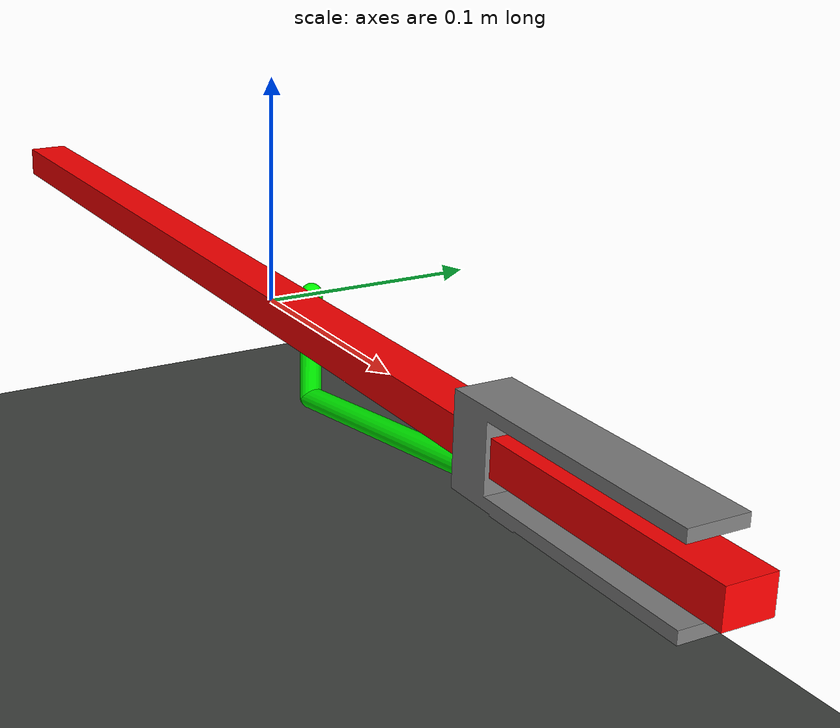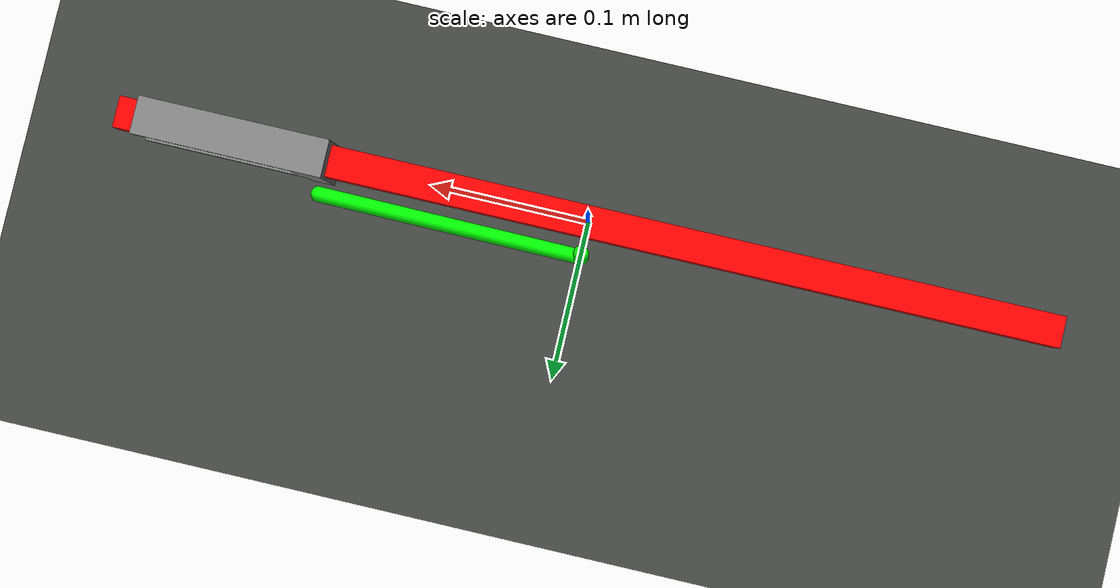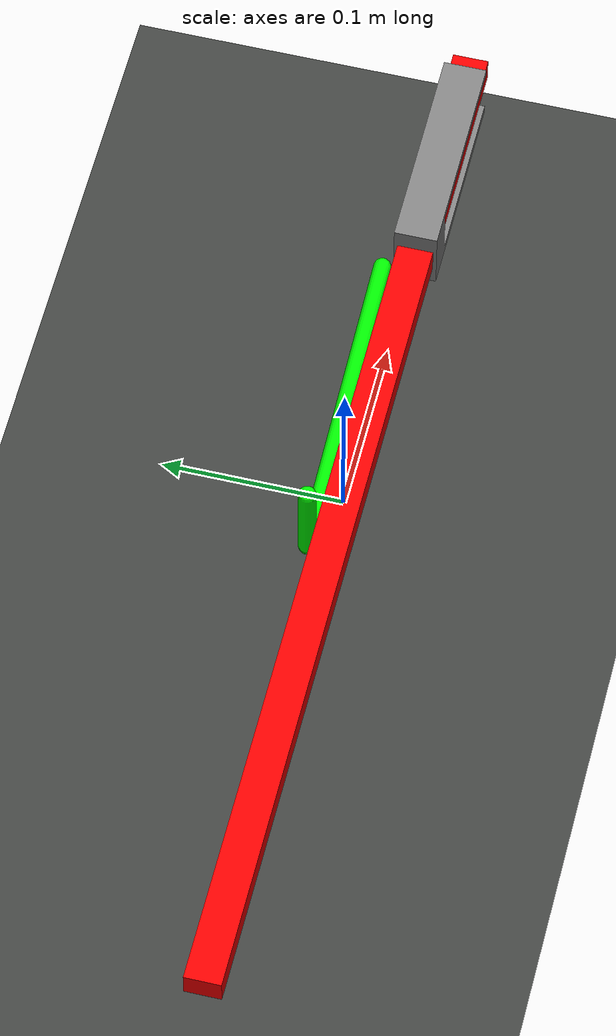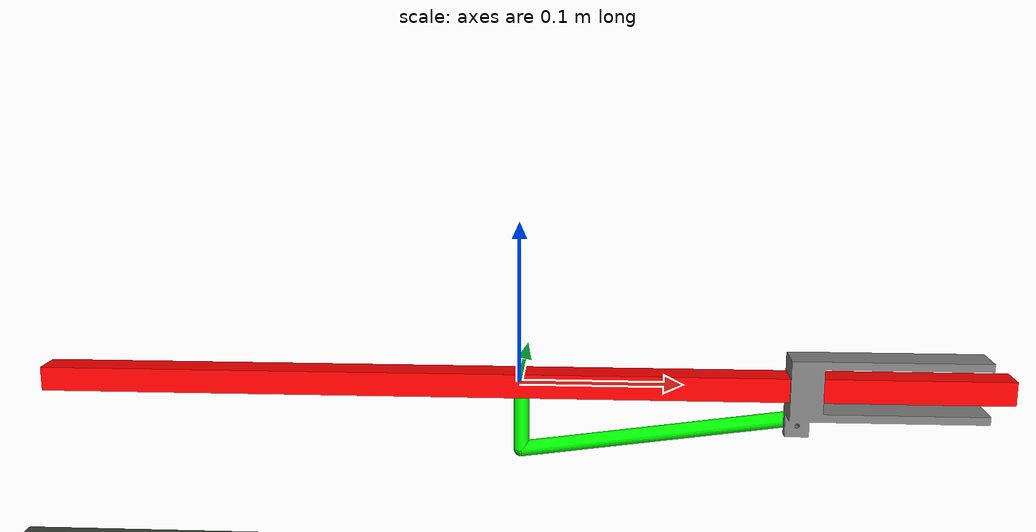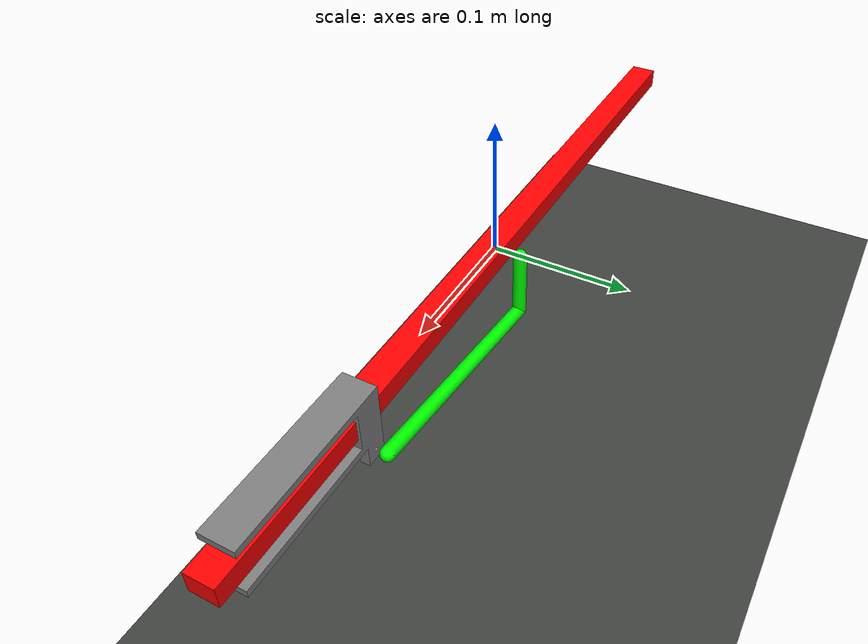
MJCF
<mujoco model="single_module">
  <option collision="predefined" timestep="0.002"/>

  <default>
    <site size="0.005" rgba="1 1 1 1"/>
    <geom contype="0" conaffinity="1" size="0.005"/>
  </default>

  <asset>
    <mesh name="slider" file="./mesh/slider.STL" scale="1e-3 1e-3 1e-3"/>
  </asset>
  <worldbody>
    <light cutoff="4.0" diffuse="1 1 1" dir="-0.9 -0.9 -2.5" directional="true" exponent="20" pos="0.9 0.9 2.5" specular="0 0 0"/>
    <geom name="ground" pos="0 0 -0.2" rgba="0.25 0.26 0.25 1" size="10 10 2" type="plane" contype="0"/>
    <body name="base" pos="0 0 0">
      <geom name="base" type="box" pos="0 0 0" size="0.3 0.01 0.0075" rgba="1 0 0 1" contype="1"/>

      <body name="slider" pos="0 0 0">
        <geom name="slider" pos="0.165 0.012 0.019" type="mesh" mesh="slider" euler="180 0 0" mass="0.02"/>
        <joint name="slider" type="slide" axis="1 0 0"/>
        <body name="slider_link" pos="0 0 0">
          <geom name="slider_link" type="capsule" fromto="0.1725 0.02 -0.0265 0.0 0.02 -0.05" rgba="0 1 0 1"/>
          <joint name="slider_link" type="hinge" axis="0 1 0" pos="0.1725 0.012 -0.0265"/>
          <body name="motor_link" pos="0 0 0">
            <geom name="motor_link" type="capsule" fromto="0.0 0.02 -0.05 0.0 0.02 0.0" rgba="0 1 0 1"/>
            <joint name="motor_link" pos="0.0 0.2 -0.05" type="hinge" axis="0 1 0"/>
          </body>
        </body>
      </body>
    </body>

  </worldbody>
  <equality>
    <connect anchor="0.0 0.0 0.0" body1="base" body2="motor_link"/>
  </equality>
  <actuator>
    <position kp="1" name="motor" joint="motor_link"/>
  </actuator>

</mujoco>
